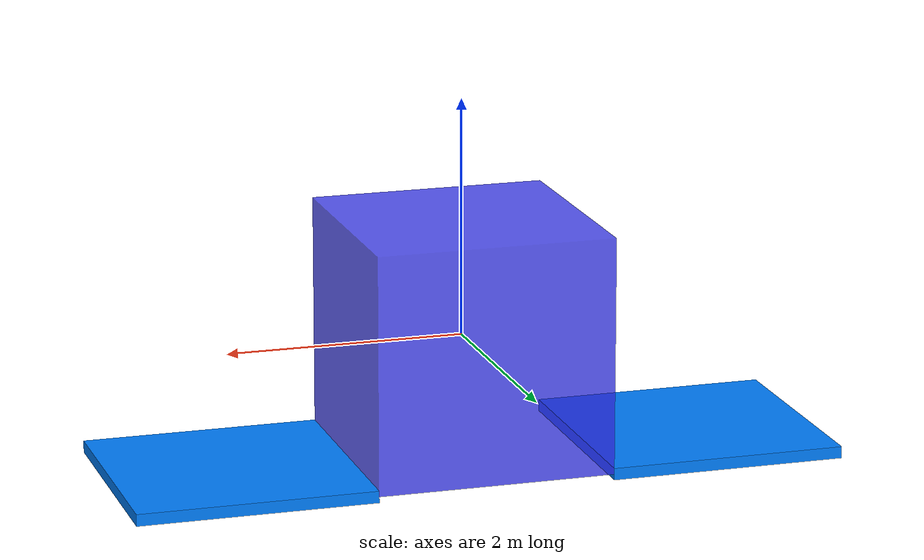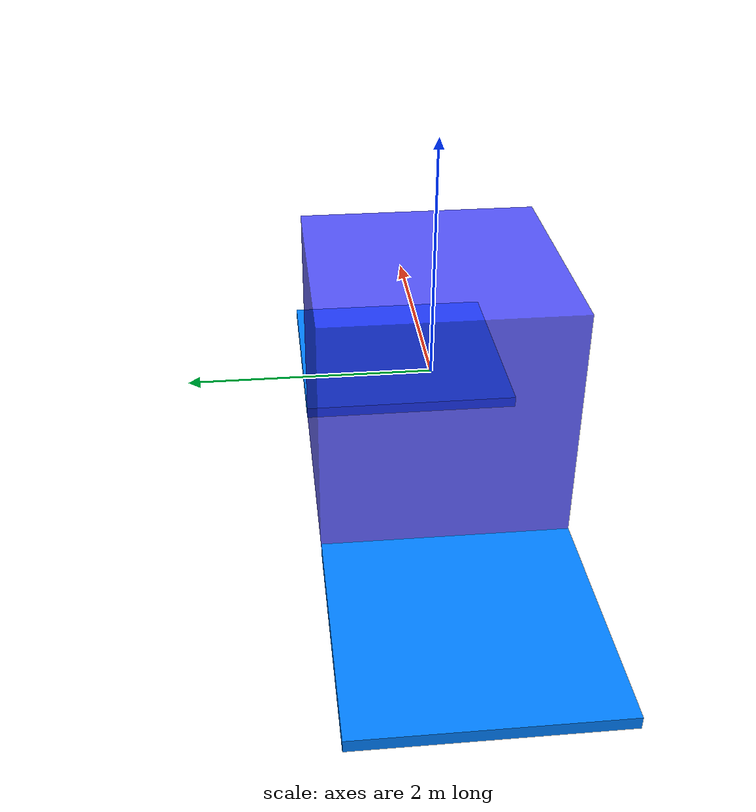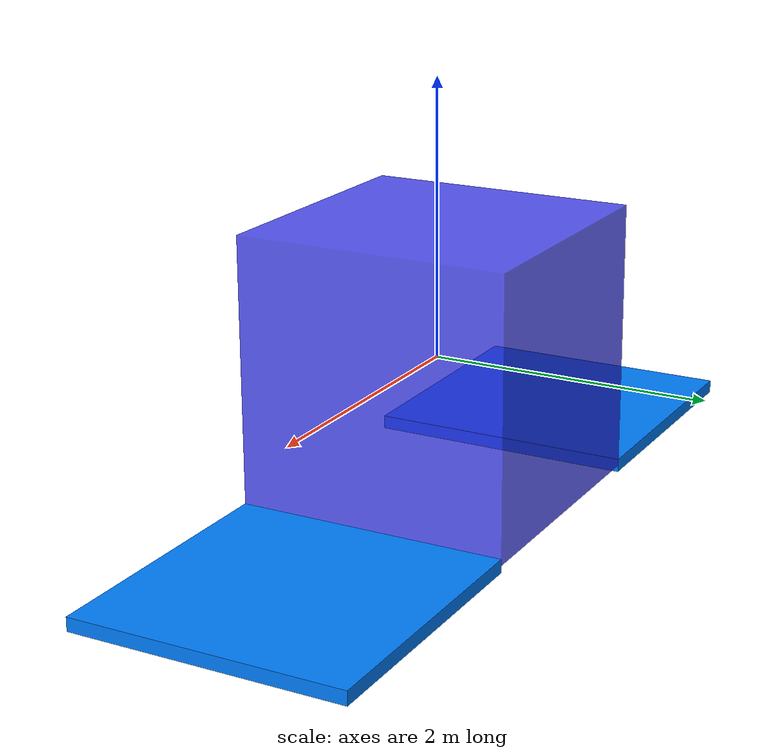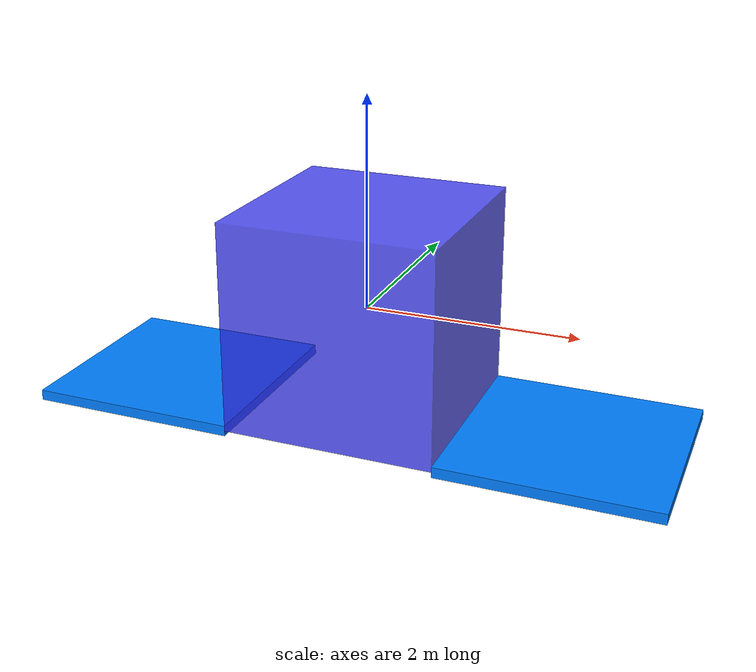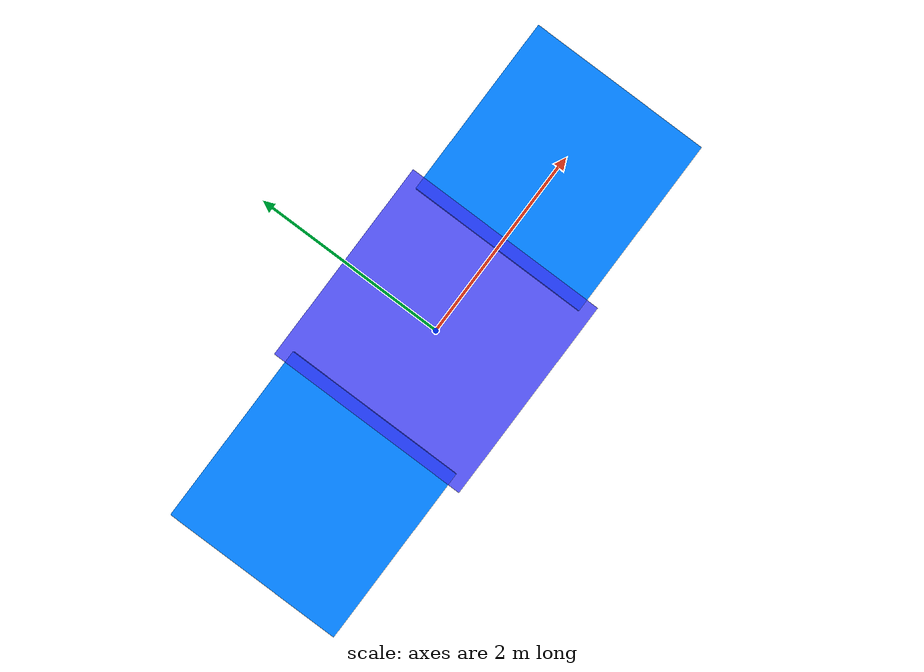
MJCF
<mujoco>
	<option gravity="0 0 0"/>

	<asset>
		<texture name="checker2" builtin="checker" width="10" height="10"/>
		<material name="checker2" texture="checker2" />
	</asset>

	<default class="main">
		<default class="companion_panel">
			<geom type="box" pos="0 0 1" size="1 0.05 1" rgba="0 0.5 1 1" contype="1" conaffinity="2"/>
		</default>
	</default>

	<worldbody>
		<body name="companion_hub">
			<freejoint name="companion_hub_free"/>
			<geom name="companion_hub_box" type="box" size="1 1 1" rgba="0.2 0.2 1 0.8" contype="1" conaffinity="2" density="200"/>

			<body name="companion_panel_p1" childclass="companion_panel" pos="1 0 -1" xyaxes="0 -1 0 0 0 -1">
				<geom name="companion_panel_p1_box"/>
				<joint name="companion_panel_p1_deploy" axis="1 0 0" range="0 90"/>
			</body>

			<body name="companion_panel_n1" childclass="companion_panel" pos="-1 0 -1" xyaxes="0 1 0 0 0 -1">
				<geom name="companion_panel_n1_box"/>
				<joint name="companion_panel_n1_deploy" axis="1 0 0" range="0 90"/>
			</body>

		</body>
	</worldbody>

	<actuator>
		<motor name="companion_panel_p1_deploy" joint="companion_panel_p1_deploy"/>
		<motor name="companion_panel_n1_deploy" joint="companion_panel_n1_deploy"/>
	</actuator>

	<keyframe>
		<key qpos='0 0 0 1 0 0 0 1.571 1.571' ctrl="0 0"/>
	</keyframe>

</mujoco>
